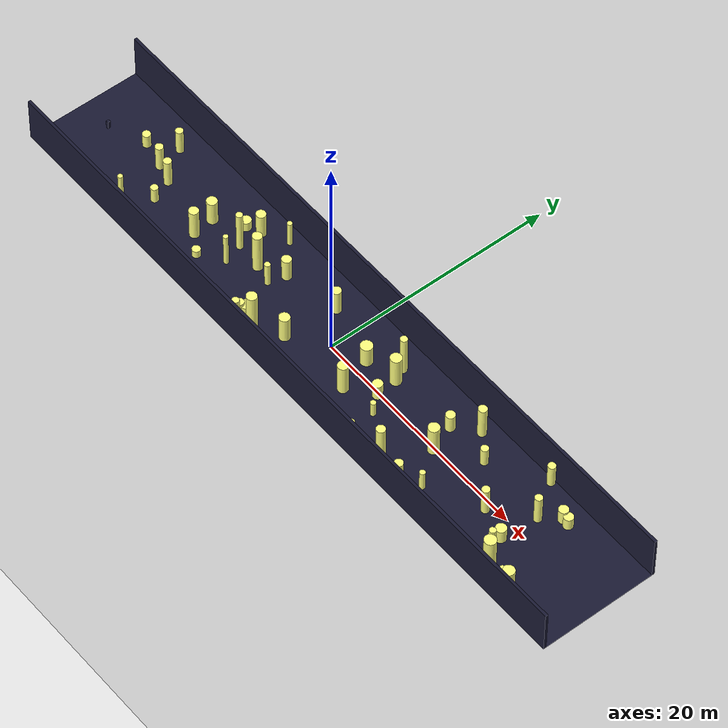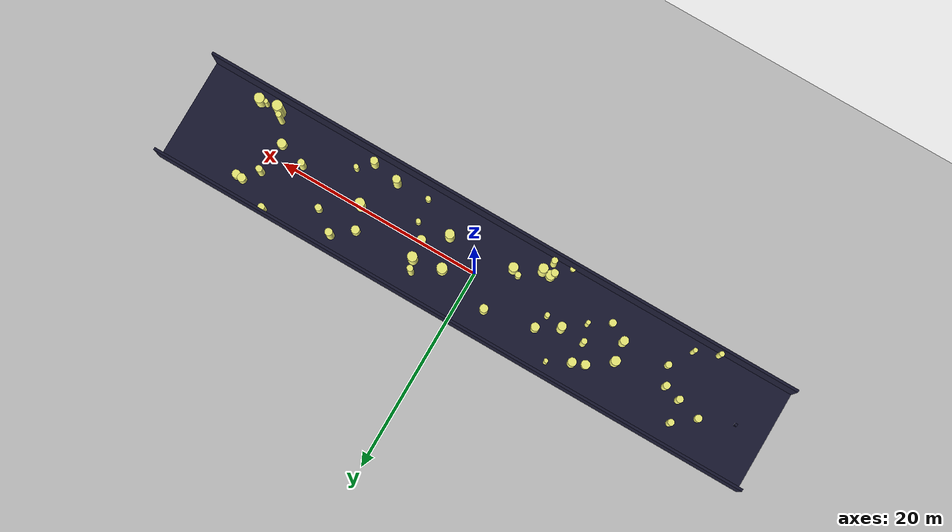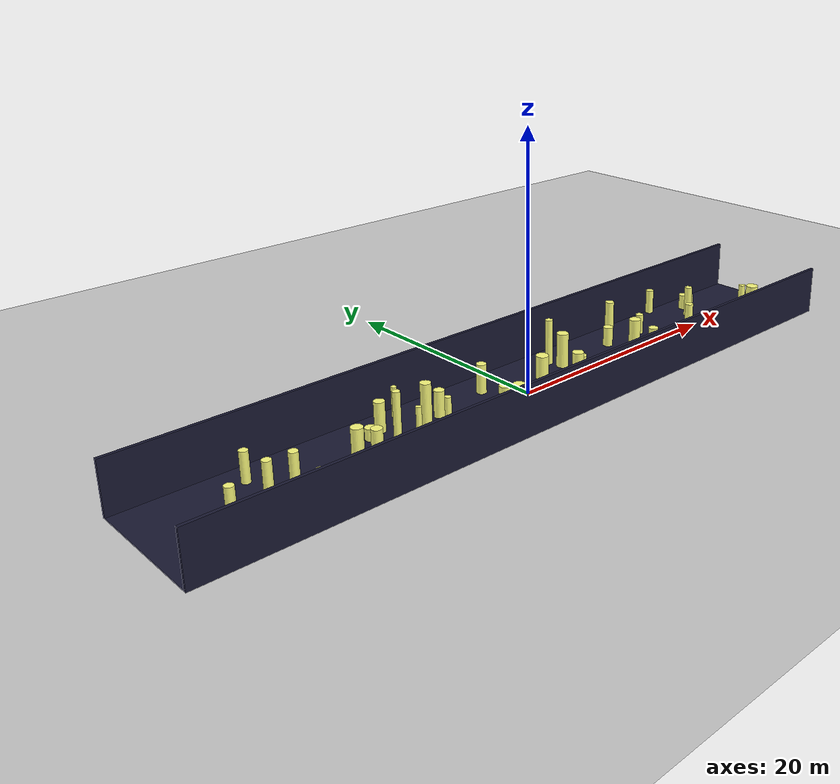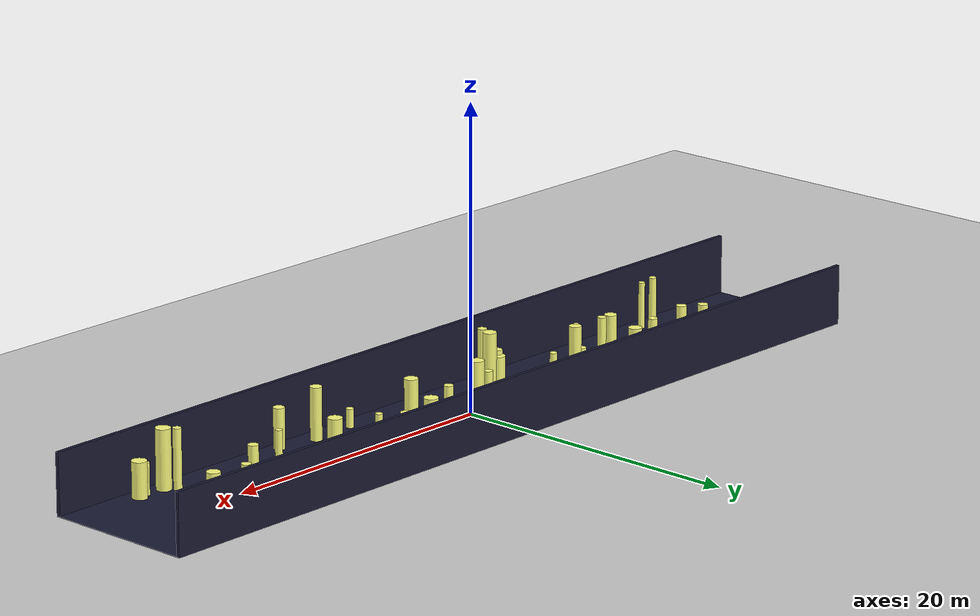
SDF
<?xml version="1.0"?>
<sdf version="1.4">
  <world name="default">
    <gui>
      <camera name="user_camera">
        <pose>-20 -30 40 0 0.66 0.83</pose>
      </camera>
    </gui>
    <include>
      <uri>model://ground_plane</uri>
    </include>
    <include>
      <uri>model://sun</uri>
    </include>
    <scene>
      <shadows>0</shadows>
    </scene>
    <model name="forest">
      <static>true</static>
      <link name="cylinder0">
        <pose>-21.455093105350016 0.6853915231173922 1.193104202084326 0 0 0 </pose>
        <visual name="visual">
          <geometry>
            <cylinder>
              <radius>0.3311819474933382</radius>
              <length>2.386208404168652</length>
            </cylinder>
          </geometry>
          <material>
            <ambient>0.6 0.6 0.6 1</ambient>
            <diffuse>1 1 0.5 1</diffuse>
            <specular>0 0 0</specular>
            <emissive>0 0 0 1</emissive>
          </material>
        </visual>
        <collision name="collision">
          <geometry>
            <cylinder>
              <radius>0.3311819474933382</radius>
              <length>2.386208404168652</length>
            </cylinder>
          </geometry>
          <max_contacts>0</max_contacts>
        </collision>
      </link>
      <link name="cylinder1">
        <pose>-11.572167524616251 2.6192228918529548 1.1745244555238814 0 0 0 </pose>
        <visual name="visual">
          <geometry>
            <cylinder>
              <radius>0.40342803475774447</radius>
              <length>2.349048911047763</length>
            </cylinder>
          </geometry>
          <material>
            <ambient>0.6 0.6 0.6 1</ambient>
            <diffuse>1 1 0.5 1</diffuse>
            <specular>0 0 0</specular>
            <emissive>0 0 0 1</emissive>
          </material>
        </visual>
        <collision name="collision">
          <geometry>
            <cylinder>
              <radius>0.40342803475774447</radius>
              <length>2.349048911047763</length>
            </cylinder>
          </geometry>
          <max_contacts>0</max_contacts>
        </collision>
      </link>
      <link name="cylinder2">
        <pose>-19.842545511858532 0.22537067740292827 1.2824136469337568 0 0 0 </pose>
        <visual name="visual">
          <geometry>
            <cylinder>
              <radius>0.335263121671897</radius>
              <length>2.5648272938675136</length>
            </cylinder>
          </geometry>
          <material>
            <ambient>0.6 0.6 0.6 1</ambient>
            <diffuse>1 1 0.5 1</diffuse>
            <specular>0 0 0</specular>
            <emissive>0 0 0 1</emissive>
          </material>
        </visual>
        <collision name="collision">
          <geometry>
            <cylinder>
              <radius>0.335263121671897</radius>
              <length>2.5648272938675136</length>
            </cylinder>
          </geometry>
          <max_contacts>0</max_contacts>
        </collision>
      </link>
      <link name="cylinder3">
        <pose>5.591799927656023 -0.1649954743188644 0.7405001377279132 0 0 0 </pose>
        <visual name="visual">
          <geometry>
            <cylinder>
              <radius>0.4094165833388592</radius>
              <length>1.4810002754558265</length>
            </cylinder>
          </geometry>
          <material>
            <ambient>0.6 0.6 0.6 1</ambient>
            <diffuse>1 1 0.5 1</diffuse>
            <specular>0 0 0</specular>
            <emissive>0 0 0 1</emissive>
          </material>
        </visual>
        <collision name="collision">
          <geometry>
            <cylinder>
              <radius>0.4094165833388592</radius>
              <length>1.4810002754558265</length>
            </cylinder>
          </geometry>
          <max_contacts>0</max_contacts>
        </collision>
      </link>
      <link name="cylinder4">
        <pose>-9.225641048121231 0.4341637060717325 1.8501954835050731 0 0 0 </pose>
        <visual name="visual">
          <geometry>
            <cylinder>
              <radius>0.39944674168902916</radius>
              <length>3.7003909670101462</length>
            </cylinder>
          </geometry>
          <material>
            <ambient>0.6 0.6 0.6 1</ambient>
            <diffuse>1 1 0.5 1</diffuse>
            <specular>0 0 0</specular>
            <emissive>0 0 0 1</emissive>
          </material>
        </visual>
        <collision name="collision">
          <geometry>
            <cylinder>
              <radius>0.39944674168902916</radius>
              <length>3.7003909670101462</length>
            </cylinder>
          </geometry>
          <max_contacts>0</max_contacts>
        </collision>
      </link>
      <link name="cylinder5">
        <pose>-20.459073126002643 -3.6960988071176115 1.5827029709909766 0 0 0 </pose>
        <visual name="visual">
          <geometry>
            <cylinder>
              <radius>0.2090821833244229</radius>
              <length>3.165405941981953</length>
            </cylinder>
          </geometry>
          <material>
            <ambient>0.6 0.6 0.6 1</ambient>
            <diffuse>1 1 0.5 1</diffuse>
            <specular>0 0 0</specular>
            <emissive>0 0 0 1</emissive>
          </material>
        </visual>
        <collision name="collision">
          <geometry>
            <cylinder>
              <radius>0.2090821833244229</radius>
              <length>3.165405941981953</length>
            </cylinder>
          </geometry>
          <max_contacts>0</max_contacts>
        </collision>
      </link>
      <link name="cylinder6">
        <pose>19.4169876304381 4.568202245388367 1.057568902153296 0 0 0 </pose>
        <visual name="visual">
          <geometry>
            <cylinder>
              <radius>0.320011438893267</radius>
              <length>2.115137804306592</length>
            </cylinder>
          </geometry>
          <material>
            <ambient>0.6 0.6 0.6 1</ambient>
            <diffuse>1 1 0.5 1</diffuse>
            <specular>0 0 0</specular>
            <emissive>0 0 0 1</emissive>
          </material>
        </visual>
        <collision name="collision">
          <geometry>
            <cylinder>
              <radius>0.320011438893267</radius>
              <length>2.115137804306592</length>
            </cylinder>
          </geometry>
          <max_contacts>0</max_contacts>
        </collision>
      </link>
      <link name="cylinder7">
        <pose>-12.742402266358106 2.1068188584611045 0.47703031622099673 0 0 0 </pose>
        <visual name="visual">
          <geometry>
            <cylinder>
              <radius>0.42181199682086723</radius>
              <length>0.9540606324419935</length>
            </cylinder>
          </geometry>
          <material>
            <ambient>0.6 0.6 0.6 1</ambient>
            <diffuse>1 1 0.5 1</diffuse>
            <specular>0 0 0</specular>
            <emissive>0 0 0 1</emissive>
          </material>
        </visual>
        <collision name="collision">
          <geometry>
            <cylinder>
              <radius>0.42181199682086723</radius>
              <length>0.9540606324419935</length>
            </cylinder>
          </geometry>
          <max_contacts>0</max_contacts>
        </collision>
      </link>
      <link name="cylinder8">
        <pose>-11.577498540111353 0.6065289896772077 1.8865261523163421 0 0 0 </pose>
        <visual name="visual">
          <geometry>
            <cylinder>
              <radius>0.2768418212160155</radius>
              <length>3.7730523046326843</length>
            </cylinder>
          </geometry>
          <material>
            <ambient>0.6 0.6 0.6 1</ambient>
            <diffuse>1 1 0.5 1</diffuse>
            <specular>0 0 0</specular>
            <emissive>0 0 0 1</emissive>
          </material>
        </visual>
        <collision name="collision">
          <geometry>
            <cylinder>
              <radius>0.2768418212160155</radius>
              <length>3.7730523046326843</length>
            </cylinder>
          </geometry>
          <max_contacts>0</max_contacts>
        </collision>
      </link>
      <link name="cylinder9">
        <pose>21.265480156518052 1.754943221798487 1.3310166183935421 0 0 0 </pose>
        <visual name="visual">
          <geometry>
            <cylinder>
              <radius>0.3126201003143565</radius>
              <length>2.6620332367870843</length>
            </cylinder>
          </geometry>
          <material>
            <ambient>0.6 0.6 0.6 1</ambient>
            <diffuse>1 1 0.5 1</diffuse>
            <specular>0 0 0</specular>
            <emissive>0 0 0 1</emissive>
          </material>
        </visual>
        <collision name="collision">
          <geometry>
            <cylinder>
              <radius>0.3126201003143565</radius>
              <length>2.6620332367870843</length>
            </cylinder>
          </geometry>
          <max_contacts>0</max_contacts>
        </collision>
      </link>
      <link name="cylinder10">
        <pose>12.943853396366379 3.5486193946074547 1.4840911874394709 0 0 0 </pose>
        <visual name="visual">
          <geometry>
            <cylinder>
              <radius>0.35647423448787513</radius>
              <length>2.9681823748789418</length>
            </cylinder>
          </geometry>
          <material>
            <ambient>0.6 0.6 0.6 1</ambient>
            <diffuse>1 1 0.5 1</diffuse>
            <specular>0 0 0</specular>
            <emissive>0 0 0 1</emissive>
          </material>
        </visual>
        <collision name="collision">
          <geometry>
            <cylinder>
              <radius>0.35647423448787513</radius>
              <length>2.9681823748789418</length>
            </cylinder>
          </geometry>
          <max_contacts>0</max_contacts>
        </collision>
      </link>
      <link name="cylinder11">
        <pose>18.312979834056414 -0.6390692636845667 1.265403920040344 0 0 0 </pose>
        <visual name="visual">
          <geometry>
            <cylinder>
              <radius>0.3273659548940959</radius>
              <length>2.530807840080688</length>
            </cylinder>
          </geometry>
          <material>
            <ambient>0.6 0.6 0.6 1</ambient>
            <diffuse>1 1 0.5 1</diffuse>
            <specular>0 0 0</specular>
            <emissive>0 0 0 1</emissive>
          </material>
        </visual>
        <collision name="collision">
          <geometry>
            <cylinder>
              <radius>0.3273659548940959</radius>
              <length>2.530807840080688</length>
            </cylinder>
          </geometry>
          <max_contacts>0</max_contacts>
        </collision>
      </link>
      <link name="cylinder12">
        <pose>-7.483956257970174 -4.793525651899016 0.33708809812410234 0 0 0 </pose>
        <visual name="visual">
          <geometry>
            <cylinder>
              <radius>0.2520292799676853</radius>
              <length>0.6741761962482047</length>
            </cylinder>
          </geometry>
          <material>
            <ambient>0.6 0.6 0.6 1</ambient>
            <diffuse>1 1 0.5 1</diffuse>
            <specular>0 0 0</specular>
            <emissive>0 0 0 1</emissive>
          </material>
        </visual>
        <collision name="collision">
          <geometry>
            <cylinder>
              <radius>0.2520292799676853</radius>
              <length>0.6741761962482047</length>
            </cylinder>
          </geometry>
          <max_contacts>0</max_contacts>
        </collision>
      </link>
      <link name="cylinder13">
        <pose>-5.225460934859587 -3.2220579401079963 1.714099720605967 0 0 0 </pose>
        <visual name="visual">
          <geometry>
            <cylinder>
              <radius>0.4420046619811379</radius>
              <length>3.428199441211934</length>
            </cylinder>
          </geometry>
          <material>
            <ambient>0.6 0.6 0.6 1</ambient>
            <diffuse>1 1 0.5 1</diffuse>
            <specular>0 0 0</specular>
            <emissive>0 0 0 1</emissive>
          </material>
        </visual>
        <collision name="collision">
          <geometry>
            <cylinder>
              <radius>0.4420046619811379</radius>
              <length>3.428199441211934</length>
            </cylinder>
          </geometry>
          <max_contacts>0</max_contacts>
        </collision>
      </link>
      <link name="cylinder14">
        <pose>15.033088483223707 2.016814384595021 0.8558442975859547 0 0 0 </pose>
        <visual name="visual">
          <geometry>
            <cylinder>
              <radius>0.3156941119015071</radius>
              <length>1.7116885951719094</length>
            </cylinder>
          </geometry>
          <material>
            <ambient>0.6 0.6 0.6 1</ambient>
            <diffuse>1 1 0.5 1</diffuse>
            <specular>0 0 0</specular>
            <emissive>0 0 0 1</emissive>
          </material>
        </visual>
        <collision name="collision">
          <geometry>
            <cylinder>
              <radius>0.3156941119015071</radius>
              <length>1.7116885951719094</length>
            </cylinder>
          </geometry>
          <max_contacts>0</max_contacts>
        </collision>
      </link>
      <link name="cylinder15">
        <pose>-14.866685743989 0.5727656262759169 1.1527157906452092 0 0 0 </pose>
        <visual name="visual">
          <geometry>
            <cylinder>
              <radius>0.4420611997477216</radius>
              <length>2.3054315812904185</length>
            </cylinder>
          </geometry>
          <material>
            <ambient>0.6 0.6 0.6 1</ambient>
            <diffuse>1 1 0.5 1</diffuse>
            <specular>0 0 0</specular>
            <emissive>0 0 0 1</emissive>
          </material>
        </visual>
        <collision name="collision">
          <geometry>
            <cylinder>
              <radius>0.4420611997477216</radius>
              <length>2.3054315812904185</length>
            </cylinder>
          </geometry>
          <max_contacts>0</max_contacts>
        </collision>
      </link>
      <link name="cylinder16">
        <pose>13.960799805348394 -2.8649785655181215 0.9272925199472946 0 0 0 </pose>
        <visual name="visual">
          <geometry>
            <cylinder>
              <radius>0.2338999066071591</radius>
              <length>1.8545850398945891</length>
            </cylinder>
          </geometry>
          <material>
            <ambient>0.6 0.6 0.6 1</ambient>
            <diffuse>1 1 0.5 1</diffuse>
            <specular>0 0 0</specular>
            <emissive>0 0 0 1</emissive>
          </material>
        </visual>
        <collision name="collision">
          <geometry>
            <cylinder>
              <radius>0.2338999066071591</radius>
              <length>1.8545850398945891</length>
            </cylinder>
          </geometry>
          <max_contacts>0</max_contacts>
        </collision>
      </link>
      <link name="cylinder17">
        <pose>-6.264471228164435 -3.5353084229861578 0.9869087407476843 0 0 0 </pose>
        <visual name="visual">
          <geometry>
            <cylinder>
              <radius>0.3451557567018403</radius>
              <length>1.9738174814953686</length>
            </cylinder>
          </geometry>
          <material>
            <ambient>0.6 0.6 0.6 1</ambient>
            <diffuse>1 1 0.5 1</diffuse>
            <specular>0 0 0</specular>
            <emissive>0 0 0 1</emissive>
          </material>
        </visual>
        <collision name="collision">
          <geometry>
            <cylinder>
              <radius>0.3451557567018403</radius>
              <length>1.9738174814953686</length>
            </cylinder>
          </geometry>
          <max_contacts>0</max_contacts>
        </collision>
      </link>
      <link name="cylinder18">
        <pose>-19.13816011907142 -1.5784059708807119 0.7422938245989532 0 0 0 </pose>
        <visual name="visual">
          <geometry>
            <cylinder>
              <radius>0.3098395552358689</radius>
              <length>1.4845876491979064</length>
            </cylinder>
          </geometry>
          <material>
            <ambient>0.6 0.6 0.6 1</ambient>
            <diffuse>1 1 0.5 1</diffuse>
            <specular>0 0 0</specular>
            <emissive>0 0 0 1</emissive>
          </material>
        </visual>
        <collision name="collision">
          <geometry>
            <cylinder>
              <radius>0.3098395552358689</radius>
              <length>1.4845876491979064</length>
            </cylinder>
          </geometry>
          <max_contacts>0</max_contacts>
        </collision>
      </link>
      <link name="cylinder19">
        <pose>23.992662716319543 -3.880095211476374 1.0451816995805272 0 0 0 </pose>
        <visual name="visual">
          <geometry>
            <cylinder>
              <radius>0.2132663010538022</radius>
              <length>2.0903633991610544</length>
            </cylinder>
          </geometry>
          <material>
            <ambient>0.6 0.6 0.6 1</ambient>
            <diffuse>1 1 0.5 1</diffuse>
            <specular>0 0 0</specular>
            <emissive>0 0 0 1</emissive>
          </material>
        </visual>
        <collision name="collision">
          <geometry>
            <cylinder>
              <radius>0.2132663010538022</radius>
              <length>2.0903633991610544</length>
            </cylinder>
          </geometry>
          <max_contacts>0</max_contacts>
        </collision>
      </link>
      <link name="cylinder20">
        <pose>-12.994213442733942 -2.3925118888714705 0.3771381991518728 0 0 0 </pose>
        <visual name="visual">
          <geometry>
            <cylinder>
              <radius>0.34916346928145003</radius>
              <length>0.7542763983037456</length>
            </cylinder>
          </geometry>
          <material>
            <ambient>0.6 0.6 0.6 1</ambient>
            <diffuse>1 1 0.5 1</diffuse>
            <specular>0 0 0</specular>
            <emissive>0 0 0 1</emissive>
          </material>
        </visual>
        <collision name="collision">
          <geometry>
            <cylinder>
              <radius>0.34916346928145003</radius>
              <length>0.7542763983037456</length>
            </cylinder>
          </geometry>
          <max_contacts>0</max_contacts>
        </collision>
      </link>
      <link name="cylinder21">
        <pose>-3.506668430526382 -1.7571471064037203 0.8119918987437942 0 0 0 </pose>
        <visual name="visual">
          <geometry>
            <cylinder>
              <radius>0.2790328626721792</radius>
              <length>1.6239837974875884</length>
            </cylinder>
          </geometry>
          <material>
            <ambient>0.6 0.6 0.6 1</ambient>
            <diffuse>1 1 0.5 1</diffuse>
            <specular>0 0 0</specular>
            <emissive>0 0 0 1</emissive>
          </material>
        </visual>
        <collision name="collision">
          <geometry>
            <cylinder>
              <radius>0.2790328626721792</radius>
              <length>1.6239837974875884</length>
            </cylinder>
          </geometry>
          <max_contacts>0</max_contacts>
        </collision>
      </link>
      <link name="cylinder22">
        <pose>11.906205200817688 -0.12698881759237945 1.366037416273232 0 0 0 </pose>
        <visual name="visual">
          <geometry>
            <cylinder>
              <radius>0.4597937639227291</radius>
              <length>2.732074832546464</length>
            </cylinder>
          </geometry>
          <material>
            <ambient>0.6 0.6 0.6 1</ambient>
            <diffuse>1 1 0.5 1</diffuse>
            <specular>0 0 0</specular>
            <emissive>0 0 0 1</emissive>
          </material>
        </visual>
        <collision name="collision">
          <geometry>
            <cylinder>
              <radius>0.4597937639227291</radius>
              <length>2.732074832546464</length>
            </cylinder>
          </geometry>
          <max_contacts>0</max_contacts>
        </collision>
      </link>
      <link name="cylinder23">
        <pose>4.976868248790094 2.7616584200481196 1.8712081818031057 0 0 0 </pose>
        <visual name="visual">
          <geometry>
            <cylinder>
              <radius>0.29562147825929264</radius>
              <length>3.7424163636062113</length>
            </cylinder>
          </geometry>
          <material>
            <ambient>0.6 0.6 0.6 1</ambient>
            <diffuse>1 1 0.5 1</diffuse>
            <specular>0 0 0</specular>
            <emissive>0 0 0 1</emissive>
          </material>
        </visual>
        <collision name="collision">
          <geometry>
            <cylinder>
              <radius>0.29562147825929264</radius>
              <length>3.7424163636062113</length>
            </cylinder>
          </geometry>
          <max_contacts>0</max_contacts>
        </collision>
      </link>
      <link name="cylinder24">
        <pose>-7.172368597248035 1.5528621841343693 1.0547048939009234 0 0 0 </pose>
        <visual name="visual">
          <geometry>
            <cylinder>
              <radius>0.39819549714206803</radius>
              <length>2.1094097878018467</length>
            </cylinder>
          </geometry>
          <material>
            <ambient>0.6 0.6 0.6 1</ambient>
            <diffuse>1 1 0.5 1</diffuse>
            <specular>0 0 0</specular>
            <emissive>0 0 0 1</emissive>
          </material>
        </visual>
        <collision name="collision">
          <geometry>
            <cylinder>
              <radius>0.39819549714206803</radius>
              <length>2.1094097878018467</length>
            </cylinder>
          </geometry>
          <max_contacts>0</max_contacts>
        </collision>
      </link>
      <link name="cylinder25">
        <pose>-2.4077875546697207 2.445808890616741 1.1853397143202447 0 0 0 </pose>
        <visual name="visual">
          <geometry>
            <cylinder>
              <radius>0.3841331884100785</radius>
              <length>2.3706794286404893</length>
            </cylinder>
          </geometry>
          <material>
            <ambient>0.6 0.6 0.6 1</ambient>
            <diffuse>1 1 0.5 1</diffuse>
            <specular>0 0 0</specular>
            <emissive>0 0 0 1</emissive>
          </material>
        </visual>
        <collision name="collision">
          <geometry>
            <cylinder>
              <radius>0.3841331884100785</radius>
              <length>2.3706794286404893</length>
            </cylinder>
          </geometry>
          <max_contacts>0</max_contacts>
        </collision>
      </link>
      <link name="cylinder26">
        <pose>-22.657145338351043 -4.627433128052328 1.4047086558411646 0 0 0 </pose>
        <visual name="visual">
          <geometry>
            <cylinder>
              <radius>0.2493351240514722</radius>
              <length>2.809417311682329</length>
            </cylinder>
          </geometry>
          <material>
            <ambient>0.6 0.6 0.6 1</ambient>
            <diffuse>1 1 0.5 1</diffuse>
            <specular>0 0 0</specular>
            <emissive>0 0 0 1</emissive>
          </material>
        </visual>
        <collision name="collision">
          <geometry>
            <cylinder>
              <radius>0.2493351240514722</radius>
              <length>2.809417311682329</length>
            </cylinder>
          </geometry>
          <max_contacts>0</max_contacts>
        </collision>
      </link>
      <link name="cylinder27">
        <pose>11.146610842977687 2.062078694214236 0.8216610757038846 0 0 0 </pose>
        <visual name="visual">
          <geometry>
            <cylinder>
              <radius>0.3893401061314063</radius>
              <length>1.6433221514077692</length>
            </cylinder>
          </geometry>
          <material>
            <ambient>0.6 0.6 0.6 1</ambient>
            <diffuse>1 1 0.5 1</diffuse>
            <specular>0 0 0</specular>
            <emissive>0 0 0 1</emissive>
          </material>
        </visual>
        <collision name="collision">
          <geometry>
            <cylinder>
              <radius>0.3893401061314063</radius>
              <length>1.6433221514077692</length>
            </cylinder>
          </geometry>
          <max_contacts>0</max_contacts>
        </collision>
      </link>
      <link name="cylinder28">
        <pose>23.055021329805847 3.0677323135590857 0.5748830532331475 0 0 0 </pose>
        <visual name="visual">
          <geometry>
            <cylinder>
              <radius>0.3963066009563364</radius>
              <length>1.149766106466295</length>
            </cylinder>
          </geometry>
          <material>
            <ambient>0.6 0.6 0.6 1</ambient>
            <diffuse>1 1 0.5 1</diffuse>
            <specular>0 0 0</specular>
            <emissive>0 0 0 1</emissive>
          </material>
        </visual>
        <collision name="collision">
          <geometry>
            <cylinder>
              <radius>0.3963066009563364</radius>
              <length>1.149766106466295</length>
            </cylinder>
          </geometry>
          <max_contacts>0</max_contacts>
        </collision>
      </link>
      <link name="cylinder29">
        <pose>-9.509495975335874 3.698682418535318 1.2003768397855406 0 0 0 </pose>
        <visual name="visual">
          <geometry>
            <cylinder>
              <radius>0.20504808458140922</radius>
              <length>2.400753679571081</length>
            </cylinder>
          </geometry>
          <material>
            <ambient>0.6 0.6 0.6 1</ambient>
            <diffuse>1 1 0.5 1</diffuse>
            <specular>0 0 0</specular>
            <emissive>0 0 0 1</emissive>
          </material>
        </visual>
        <collision name="collision">
          <geometry>
            <cylinder>
              <radius>0.20504808458140922</radius>
              <length>2.400753679571081</length>
            </cylinder>
          </geometry>
          <max_contacts>0</max_contacts>
        </collision>
      </link>
      <link name="cylinder30">
        <pose>24.59634814110843 -3.8052507401898295 1.1928842621233025 0 0 0 </pose>
        <visual name="visual">
          <geometry>
            <cylinder>
              <radius>0.4772186133756066</radius>
              <length>2.385768524246605</length>
            </cylinder>
          </geometry>
          <material>
            <ambient>0.6 0.6 0.6 1</ambient>
            <diffuse>1 1 0.5 1</diffuse>
            <specular>0 0 0</specular>
            <emissive>0 0 0 1</emissive>
          </material>
        </visual>
        <collision name="collision">
          <geometry>
            <cylinder>
              <radius>0.4772186133756066</radius>
              <length>2.385768524246605</length>
            </cylinder>
          </geometry>
          <max_contacts>0</max_contacts>
        </collision>
      </link>
      <link name="cylinder31">
        <pose>2.6635172721441656 1.1703186717483032 0.9611491037134873 0 0 0 </pose>
        <visual name="visual">
          <geometry>
            <cylinder>
              <radius>0.49914995550407826</radius>
              <length>1.9222982074269745</length>
            </cylinder>
          </geometry>
          <material>
            <ambient>0.6 0.6 0.6 1</ambient>
            <diffuse>1 1 0.5 1</diffuse>
            <specular>0 0 0</specular>
            <emissive>0 0 0 1</emissive>
          </material>
        </visual>
        <collision name="collision">
          <geometry>
            <cylinder>
              <radius>0.49914995550407826</radius>
              <length>1.9222982074269745</length>
            </cylinder>
          </geometry>
          <max_contacts>0</max_contacts>
        </collision>
      </link>
      <link name="cylinder32">
        <pose>-7.582629339383402 0.07695042958731158 1.1165556911848773 0 0 0 </pose>
        <visual name="visual">
          <geometry>
            <cylinder>
              <radius>0.2408752053825888</radius>
              <length>2.2331113823697546</length>
            </cylinder>
          </geometry>
          <material>
            <ambient>0.6 0.6 0.6 1</ambient>
            <diffuse>1 1 0.5 1</diffuse>
            <specular>0 0 0</specular>
            <emissive>0 0 0 1</emissive>
          </material>
        </visual>
        <collision name="collision">
          <geometry>
            <cylinder>
              <radius>0.2408752053825888</radius>
              <length>2.2331113823697546</length>
            </cylinder>
          </geometry>
          <max_contacts>0</max_contacts>
        </collision>
      </link>
      <link name="cylinder33">
        <pose>-21.795450576063036 2.850094808528741 1.1644635404323416 0 0 0 </pose>
        <visual name="visual">
          <geometry>
            <cylinder>
              <radius>0.3173681311721759</radius>
              <length>2.328927080864683</length>
            </cylinder>
          </geometry>
          <material>
            <ambient>0.6 0.6 0.6 1</ambient>
            <diffuse>1 1 0.5 1</diffuse>
            <specular>0 0 0</specular>
            <emissive>0 0 0 1</emissive>
          </material>
        </visual>
        <collision name="collision">
          <geometry>
            <cylinder>
              <radius>0.3173681311721759</radius>
              <length>2.328927080864683</length>
            </cylinder>
          </geometry>
          <max_contacts>0</max_contacts>
        </collision>
      </link>
      <link name="cylinder34">
        <pose>-2.8353411836612494 -2.076204576977143 1.1952572322228088 0 0 0 </pose>
        <visual name="visual">
          <geometry>
            <cylinder>
              <radius>0.4440435159104932</radius>
              <length>2.3905144644456175</length>
            </cylinder>
          </geometry>
          <material>
            <ambient>0.6 0.6 0.6 1</ambient>
            <diffuse>1 1 0.5 1</diffuse>
            <specular>0 0 0</specular>
            <emissive>0 0 0 1</emissive>
          </material>
        </visual>
        <collision name="collision">
          <geometry>
            <cylinder>
              <radius>0.4440435159104932</radius>
              <length>2.3905144644456175</length>
            </cylinder>
          </geometry>
          <max_contacts>0</max_contacts>
        </collision>
      </link>
      <link name="cylinder35">
        <pose>-6.039274223582947 -3.2235263094892455 0.8403733415486638 0 0 0 </pose>
        <visual name="visual">
          <geometry>
            <cylinder>
              <radius>0.4605726089563482</radius>
              <length>1.6807466830973277</length>
            </cylinder>
          </geometry>
          <material>
            <ambient>0.6 0.6 0.6 1</ambient>
            <diffuse>1 1 0.5 1</diffuse>
            <specular>0 0 0</specular>
            <emissive>0 0 0 1</emissive>
          </material>
        </visual>
        <collision name="collision">
          <geometry>
            <cylinder>
              <radius>0.4605726089563482</radius>
              <length>1.6807466830973277</length>
            </cylinder>
          </geometry>
          <max_contacts>0</max_contacts>
        </collision>
      </link>
      <link name="cylinder36">
        <pose>22.583877571856533 -3.858256550057908 1.955214952885782 0 0 0 </pose>
        <visual name="visual">
          <geometry>
            <cylinder>
              <radius>0.4828507328628749</radius>
              <length>3.910429905771564</length>
            </cylinder>
          </geometry>
          <material>
            <ambient>0.6 0.6 0.6 1</ambient>
            <diffuse>1 1 0.5 1</diffuse>
            <specular>0 0 0</specular>
            <emissive>0 0 0 1</emissive>
          </material>
        </visual>
        <collision name="collision">
          <geometry>
            <cylinder>
              <radius>0.4828507328628749</radius>
              <length>3.910429905771564</length>
            </cylinder>
          </geometry>
          <max_contacts>0</max_contacts>
        </collision>
      </link>
      <link name="cylinder37">
        <pose>10.073065471790798 -3.5321246139599727 1.7463683147428937 0 0 0 </pose>
        <visual name="visual">
          <geometry>
            <cylinder>
              <radius>0.37511379817457563</radius>
              <length>3.4927366294857873</length>
            </cylinder>
          </geometry>
          <material>
            <ambient>0.6 0.6 0.6 1</ambient>
            <diffuse>1 1 0.5 1</diffuse>
            <specular>0 0 0</specular>
            <emissive>0 0 0 1</emissive>
          </material>
        </visual>
        <collision name="collision">
          <geometry>
            <cylinder>
              <radius>0.37511379817457563</radius>
              <length>3.4927366294857873</length>
            </cylinder>
          </geometry>
          <max_contacts>0</max_contacts>
        </collision>
      </link>
      <link name="cylinder38">
        <pose>22.441791277284786 3.12958763865028 0.6606792588828166 0 0 0 </pose>
        <visual name="visual">
          <geometry>
            <cylinder>
              <radius>0.4004434935351216</radius>
              <length>1.3213585177656333</length>
            </cylinder>
          </geometry>
          <material>
            <ambient>0.6 0.6 0.6 1</ambient>
            <diffuse>1 1 0.5 1</diffuse>
            <specular>0 0 0</specular>
            <emissive>0 0 0 1</emissive>
          </material>
        </visual>
        <collision name="collision">
          <geometry>
            <cylinder>
              <radius>0.4004434935351216</radius>
              <length>1.3213585177656333</length>
            </cylinder>
          </geometry>
          <max_contacts>0</max_contacts>
        </collision>
      </link>
      <link name="cylinder39">
        <pose>5.404113114294141 1.6881598991252291 1.408553740769664 0 0 0 </pose>
        <visual name="visual">
          <geometry>
            <cylinder>
              <radius>0.46751861935301764</radius>
              <length>2.817107481539328</length>
            </cylinder>
          </geometry>
          <material>
            <ambient>0.6 0.6 0.6 1</ambient>
            <diffuse>1 1 0.5 1</diffuse>
            <specular>0 0 0</specular>
            <emissive>0 0 0 1</emissive>
          </material>
        </visual>
        <collision name="collision">
          <geometry>
            <cylinder>
              <radius>0.46751861935301764</radius>
              <length>2.817107481539328</length>
            </cylinder>
          </geometry>
          <max_contacts>0</max_contacts>
        </collision>
      </link>
      <link name="cylinder40">
        <pose>6.950845805718529 -3.6944697658700565 0.6365589556423181 0 0 0 </pose>
        <visual name="visual">
          <geometry>
            <cylinder>
              <radius>0.24482088522177994</radius>
              <length>1.2731179112846363</length>
            </cylinder>
          </geometry>
          <material>
            <ambient>0.6 0.6 0.6 1</ambient>
            <diffuse>1 1 0.5 1</diffuse>
            <specular>0 0 0</specular>
            <emissive>0 0 0 1</emissive>
          </material>
        </visual>
        <collision name="collision">
          <geometry>
            <cylinder>
              <radius>0.24482088522177994</radius>
              <length>1.2731179112846363</length>
            </cylinder>
          </geometry>
          <max_contacts>0</max_contacts>
        </collision>
      </link>
      <link name="cylinder41">
        <pose>-14.626003579480745 -1.3083182500860726 1.4132118327032512 0 0 0 </pose>
        <visual name="visual">
          <geometry>
            <cylinder>
              <radius>0.4037627104037752</radius>
              <length>2.8264236654065025</length>
            </cylinder>
          </geometry>
          <material>
            <ambient>0.6 0.6 0.6 1</ambient>
            <diffuse>1 1 0.5 1</diffuse>
            <specular>0 0 0</specular>
            <emissive>0 0 0 1</emissive>
          </material>
        </visual>
        <collision name="collision">
          <geometry>
            <cylinder>
              <radius>0.4037627104037752</radius>
              <length>2.8264236654065025</length>
            </cylinder>
          </geometry>
          <max_contacts>0</max_contacts>
        </collision>
      </link>
      <link name="cylinder42">
        <pose>20.91277772438775 -1.3755281114027151 0.6655079399916395 0 0 0 </pose>
        <visual name="visual">
          <geometry>
            <cylinder>
              <radius>0.4353590726771307</radius>
              <length>1.331015879983279</length>
            </cylinder>
          </geometry>
          <material>
            <ambient>0.6 0.6 0.6 1</ambient>
            <diffuse>1 1 0.5 1</diffuse>
            <specular>0 0 0</specular>
            <emissive>0 0 0 1</emissive>
          </material>
        </visual>
        <collision name="collision">
          <geometry>
            <cylinder>
              <radius>0.4353590726771307</radius>
              <length>1.331015879983279</length>
            </cylinder>
          </geometry>
          <max_contacts>0</max_contacts>
        </collision>
      </link>
      <link name="cylinder43">
        <pose>12.740879608794373 -4.052696272620867 1.353236849893943 0 0 0 </pose>
        <visual name="visual">
          <geometry>
            <cylinder>
              <radius>0.3602462108378892</radius>
              <length>2.706473699787886</length>
            </cylinder>
          </geometry>
          <material>
            <ambient>0.6 0.6 0.6 1</ambient>
            <diffuse>1 1 0.5 1</diffuse>
            <specular>0 0 0</specular>
            <emissive>0 0 0 1</emissive>
          </material>
        </visual>
        <collision name="collision">
          <geometry>
            <cylinder>
              <radius>0.3602462108378892</radius>
              <length>2.706473699787886</length>
            </cylinder>
          </geometry>
          <max_contacts>0</max_contacts>
        </collision>
      </link>
      <link name="cylinder44">
        <pose>-5.734379353049608 -4.322246162140951 1.6591486403793012 0 0 0 </pose>
        <visual name="visual">
          <geometry>
            <cylinder>
              <radius>0.29469408971771677</radius>
              <length>3.3182972807586024</length>
            </cylinder>
          </geometry>
          <material>
            <ambient>0.6 0.6 0.6 1</ambient>
            <diffuse>1 1 0.5 1</diffuse>
            <specular>0 0 0</specular>
            <emissive>0 0 0 1</emissive>
          </material>
        </visual>
        <collision name="collision">
          <geometry>
            <cylinder>
              <radius>0.29469408971771677</radius>
              <length>3.3182972807586024</length>
            </cylinder>
          </geometry>
          <max_contacts>0</max_contacts>
        </collision>
      </link>
      <link name="cylinder45">
        <pose>6.684354438224581 -1.4689556529776295 0.6929004984058683 0 0 0 </pose>
        <visual name="visual">
          <geometry>
            <cylinder>
              <radius>0.23111133547309495</radius>
              <length>1.3858009968117366</length>
            </cylinder>
          </geometry>
          <material>
            <ambient>0.6 0.6 0.6 1</ambient>
            <diffuse>1 1 0.5 1</diffuse>
            <specular>0 0 0</specular>
            <emissive>0 0 0 1</emissive>
          </material>
        </visual>
        <collision name="collision">
          <geometry>
            <cylinder>
              <radius>0.23111133547309495</radius>
              <length>1.3858009968117366</length>
            </cylinder>
          </geometry>
          <max_contacts>0</max_contacts>
        </collision>
      </link>
      <link name="cylinder46">
        <pose>-23.793644851145366 1.2330400840483708 0.6572400514864503 0 0 0 </pose>
        <visual name="visual">
          <geometry>
            <cylinder>
              <radius>0.34414806946681475</radius>
              <length>1.3144801029729005</length>
            </cylinder>
          </geometry>
          <material>
            <ambient>0.6 0.6 0.6 1</ambient>
            <diffuse>1 1 0.5 1</diffuse>
            <specular>0 0 0</specular>
            <emissive>0 0 0 1</emissive>
          </material>
        </visual>
        <collision name="collision">
          <geometry>
            <cylinder>
              <radius>0.34414806946681475</radius>
              <length>1.3144801029729005</length>
            </cylinder>
          </geometry>
          <max_contacts>0</max_contacts>
        </collision>
      </link>
      <link name="cylinder47">
        <pose>22.063465965831917 -3.213080247014626 1.9658631860838858 0 0 0 </pose>
        <visual name="visual">
          <geometry>
            <cylinder>
              <radius>0.26564184183298767</radius>
              <length>3.9317263721677715</length>
            </cylinder>
          </geometry>
          <material>
            <ambient>0.6 0.6 0.6 1</ambient>
            <diffuse>1 1 0.5 1</diffuse>
            <specular>0 0 0</specular>
            <emissive>0 0 0 1</emissive>
          </material>
        </visual>
        <collision name="collision">
          <geometry>
            <cylinder>
              <radius>0.26564184183298767</radius>
              <length>3.9317263721677715</length>
            </cylinder>
          </geometry>
          <max_contacts>0</max_contacts>
        </collision>
      </link>
      <link name="cylinder48">
        <pose>-11.056030062055155 -1.0911816737509716 1.5313064121164168 0 0 0 </pose>
        <visual name="visual">
          <geometry>
            <cylinder>
              <radius>0.2021412877502925</radius>
              <length>3.0626128242328337</length>
            </cylinder>
          </geometry>
          <material>
            <ambient>0.6 0.6 0.6 1</ambient>
            <diffuse>1 1 0.5 1</diffuse>
            <specular>0 0 0</specular>
            <emissive>0 0 0 1</emissive>
          </material>
        </visual>
        <collision name="collision">
          <geometry>
            <cylinder>
              <radius>0.2021412877502925</radius>
              <length>3.0626128242328337</length>
            </cylinder>
          </geometry>
          <max_contacts>0</max_contacts>
        </collision>
      </link>
      <link name="cylinder49">
        <pose>3.5427990080835983 -1.737388048841031 1.414149255523731 0 0 0 </pose>
        <visual name="visual">
          <geometry>
            <cylinder>
              <radius>0.4447732147441527</radius>
              <length>2.828298511047462</length>
            </cylinder>
          </geometry>
          <material>
            <ambient>0.6 0.6 0.6 1</ambient>
            <diffuse>1 1 0.5 1</diffuse>
            <specular>0 0 0</specular>
            <emissive>0 0 0 1</emissive>
          </material>
        </visual>
        <collision name="collision">
          <geometry>
            <cylinder>
              <radius>0.4447732147441527</radius>
              <length>2.828298511047462</length>
            </cylinder>
          </geometry>
          <max_contacts>0</max_contacts>
        </collision>
      </link>
      <link name="cube0">
        <pose>0 5.0 2.0 0 0 0 </pose>
        <visual name="visual">
          <geometry>
            <box>
              <size>60.0 0.25 4.0</size>
            </box>
          </geometry>
          <material>
            <ambient>0.1 0.1 0.1 1</ambient>
            <diffuse>0.1 0.1 0.2 1</diffuse>
            <specular>0 0 0</specular>
            <emissive>0 0 0 1</emissive>
          </material>
        </visual>
        <collision name="collision">
          <geometry>
            <box>
              <size>60.0 0.25 4.0</size>
            </box>
          </geometry>
          <max_contacts>0</max_contacts>
        </collision>
      </link>
      <link name="cube1">
        <pose>0 -5.0 2.0 0 0 0 </pose>
        <visual name="visual">
          <geometry>
            <box>
              <size>60.0 0.25 4.0</size>
            </box>
          </geometry>
          <material>
            <ambient>0.1 0.1 0.1 1</ambient>
            <diffuse>0.1 0.1 0.2 1</diffuse>
            <specular>0 0 0</specular>
            <emissive>0 0 0 1</emissive>
          </material>
        </visual>
        <collision name="collision">
          <geometry>
            <box>
              <size>60.0 0.25 4.0</size>
            </box>
          </geometry>
          <max_contacts>0</max_contacts>
        </collision>
      </link>
      <link name="cube2">
        <pose>0 0 0.03125 0 0 0 </pose>
        <visual name="visual">
          <geometry>
            <box>
              <size>60.0 10 0.0625</size>
            </box>
          </geometry>
          <material>
            <ambient>0.1 0.1 0.1 1</ambient>
            <diffuse>0.1 0.1 0.2 1</diffuse>
            <specular>0 0 0</specular>
            <emissive>0 0 0 1</emissive>
          </material>
        </visual>
        <collision name="collision">
          <geometry>
            <box>
              <size>60.0 10 0.0625</size>
            </box>
          </geometry>
          <max_contacts>0</max_contacts>
        </collision>
      </link>
      <link name="cube3">
        <pose>-27.0 0.0 0.25 0 0 0 </pose>
        <visual name="visual">
          <geometry>
            <box>
              <size>0.25 0.25 1.0</size>
            </box>
          </geometry>
          <material>
            <ambient>0.1 0.1 0.1 1</ambient>
            <diffuse>0.1 0.1 0.2 1</diffuse>
            <specular>0 0 0</specular>
            <emissive>0 0 0 1</emissive>
          </material>
        </visual>
        <collision name="collision">
          <geometry>
            <box>
              <size>0.25 0.25 1.0</size>
            </box>
          </geometry>
          <max_contacts>0</max_contacts>
        </collision>
      </link>
    </model>
    <!-- Physics -->
    <physics name="default_physics" default="0" type="ode">
      <max_step_size>0.004</max_step_size>
      <real_time_factor>1</real_time_factor>
      <real_time_update_rate>250</real_time_update_rate>
      <gravity>0 0 -9.8</gravity>
      <magnetic_field>6e-06 2.3e-05 -4.2e-05</magnetic_field>
      <ode>
        <solver>
          <type>quick</type>
          <iters>1000</iters>
          <sor>1.3</sor>
          <use_dynamic_moi_rescaling>0</use_dynamic_moi_rescaling>
        </solver>
        <constraints>
          <cfm>0</cfm>
          <erp>0.2</erp>
          <contact_max_correcting_vel>100</contact_max_correcting_vel>
          <contact_surface_layer>0.001</contact_surface_layer>
        </constraints>
      </ode>
    </physics>
  </world>
</sdf>
